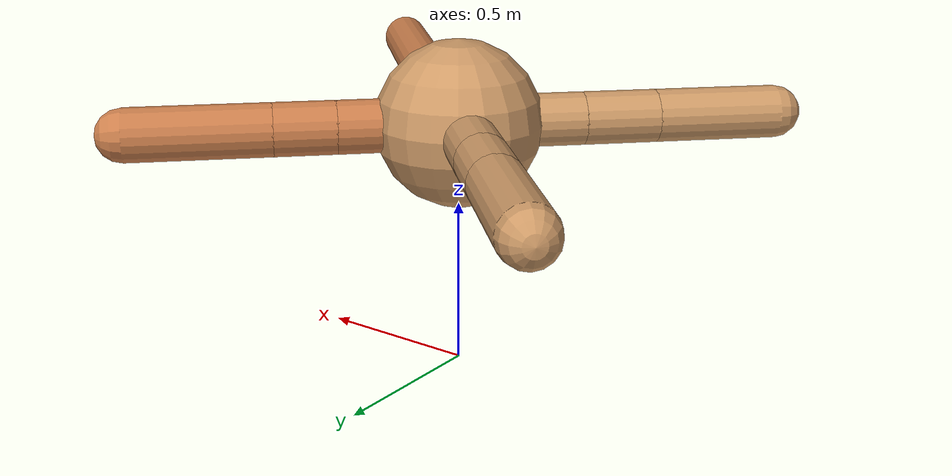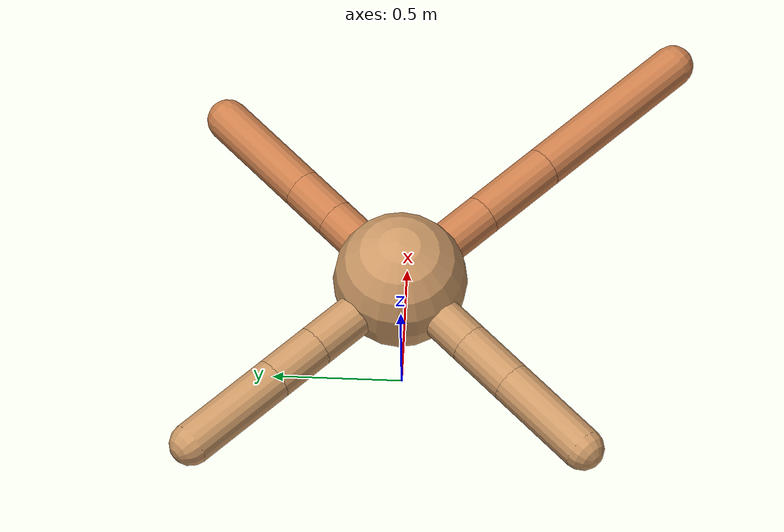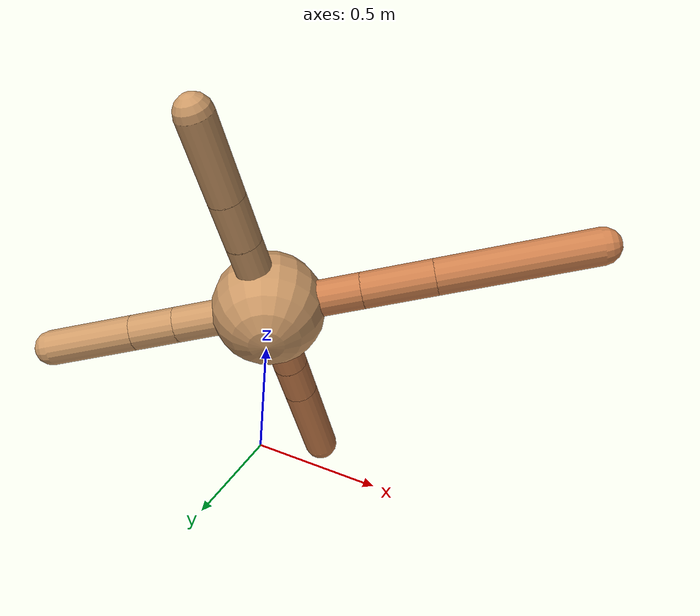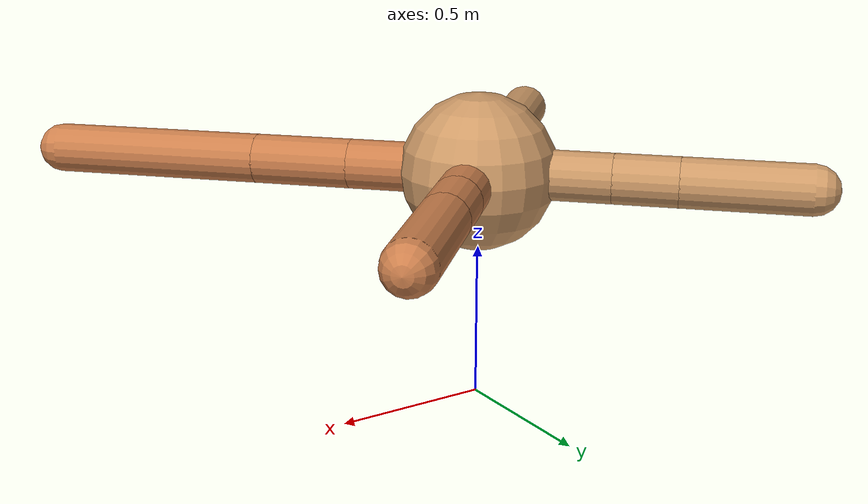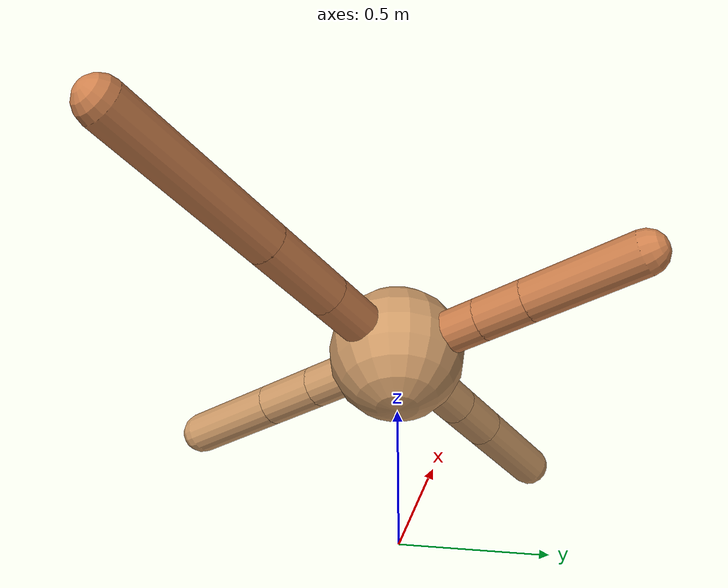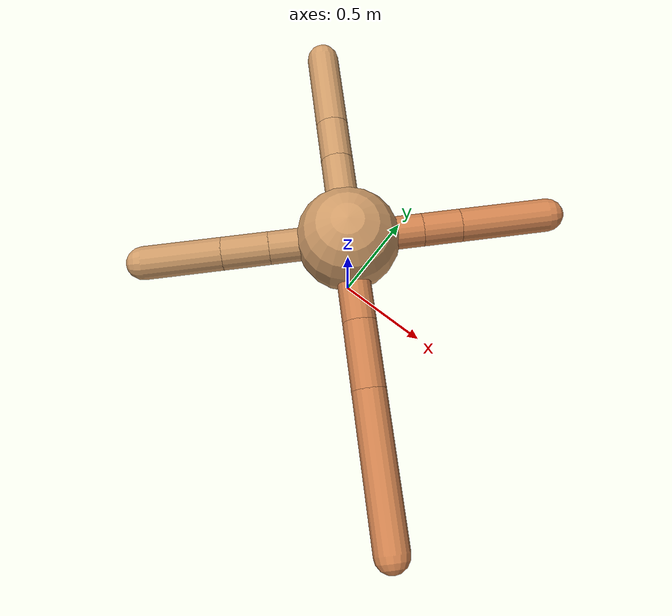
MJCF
<mujoco model="ant">
  <compiler angle="degree" coordinate="local" inertiafromgeom="true" />
  <option integrator="RK4" timestep="0.01" />
  <custom>
    <numeric data="0.0 0.0 0.55 1.0 0.0 0.0 0.0 0.0 1.0 0.0 -1.0 0.0 -1.0 0.0 1.0" name="init_qpos" />
  </custom>
  <default>
    <joint armature="1" damping="1" limited="true" />
    <geom conaffinity="0" condim="3" density="5.0" friction="1.5 0.1 0.1" margin="0.01" rgba="0.8 0.6 0.4 1" />
  </default>
  <worldbody>
    <body name="torso" pos="0 0 0.75">
      <geom name="torso_geom" pos="0 0 0" size="0.25" type="sphere" />

      <body name="front_left_leg" pos="0 0 0">
        <geom fromto="0.0 0.0 0.0 0.2546727886524619 0.2546727886524619 0.0" name="aux_1_geom" size="0.08" type="capsule" rgba=".8 .5 .3 1" />
        <body name="aux_1" pos="0.2546727886524619 0.2546727886524619 0.0">
          <joint axis="0 0 1" name="hip_1" pos="0.0 0.0 0.0" range="-40 40" type="hinge" />
          <geom fromto="0.0 0.0 0.0 0.13008697177105336 0.13008697177105336 0.0" name="left_leg_geom" size="0.08" type="capsule" rgba=".8 .5 .3 1" />
          <body pos="0.13008697177105336 0.13008697177105336 0.0" name="front_left_foot">
            <joint axis="-1 1 0" name="ankle_1" pos="0.0 0.0 0.0" range="30 100" type="hinge" />
            <geom fromto="0.0 0.0 0.0 0.30001578924767397 0.30001578924767397 0.0" name="left_ankle_geom" size="0.08" type="capsule" rgba=".8 .5 .3 1" />
          </body>
        </body>
      </body>
      <body name="front_right_leg" pos="0 0 0">
        <geom fromto="0.0 0.0 0.0 -0.29823146086194563 0.29823146086194563 0.0" name="aux_2_geom" size="0.08" type="capsule" />
        <body name="aux_2" pos="-0.29823146086194563 0.29823146086194563 0.0">
          <joint axis="0 0 1" name="hip_2" pos="0.0 0.0 0.0" range="-40 40" type="hinge" />
          <geom fromto="0.0 0.0 0.0 -0.1436783330956449 0.1436783330956449 0.0" name="right_leg_geom" size="0.08" type="capsule" />
          <body pos="-0.1436783330956449 0.1436783330956449 0.0" name="front_right_foot">
            <joint axis="1 1 0" name="ankle_2" pos="0.0 0.0 0.0" range="-100 -30" type="hinge" />
            <geom fromto="0.0 0.0 0.0 -0.2814427583219161 0.2814427583219161 0.0" name="right_ankle_geom" size="0.08" type="capsule" />
          </body>
        </body>
      </body>
      <body name="left_back_leg" pos="0 0 0">
        <geom fromto="0.0 0.0 0.0 -0.2651939192107419 -0.2651939192107419 0.0" name="aux_3_geom" size="0.08" type="capsule" />
        <body name="aux_3" pos="-0.2651939192107419 -0.2651939192107419 0.0">
          <joint axis="0 0 1" name="hip_3" pos="0.0 0.0 0.0" range="-40 40" type="hinge" />
          <geom fromto="0.0 0.0 0.0 -0.15796728756387235 -0.15796728756387235 0.0" name="back_leg_geom" size="0.08" type="capsule" />
          <body pos="-0.15796728756387235 -0.15796728756387235 0.0" name="left_back_foot">
            <joint axis="-1 1 0" name="ankle_3" pos="0.0 0.0 0.0" range="-100 -30" type="hinge" />
            <geom fromto="0.0 0.0 0.0 -0.26466764695687206 -0.26466764695687206 0.0" name="third_ankle_geom" size="0.08" type="capsule" />
          </body>
        </body>
      </body>
      <body name="right_back_leg" pos="0 0 0">
        <geom fromto="0.0 0.0 0.0 0.294856828649821 -0.294856828649821 0.0" name="aux_4_geom" size="0.08" type="capsule" rgba=".8 .5 .3 1" />
        <body name="aux_4" pos="0.294856828649821 -0.294856828649821 0.0">
          <joint axis="0 0 1" name="hip_4" pos="0.0 0.0 0.0" range="-40 40" type="hinge" />
          <geom fromto="0.0 0.0 0.0 0.22290507569715234 -0.22290507569715234 0.0" name="rightback_leg_geom" size="0.08" type="capsule" rgba=".8 .5 .3 1" />
          <body pos="0.22290507569715234 -0.22290507569715234 0.0" name="right_back_foot">
            <joint axis="1 1 0" name="ankle_4" pos="0.0 0.0 0.0" range="30 100" type="hinge" />
            <geom fromto="0.0 0.0 0.0 0.4835197625496716 -0.4835197625496716 0.0" name="fourth_ankle_geom" size="0.08" type="capsule" rgba=".8 .5 .3 1" />
          </body>
        </body>
      </body>
    </body>
  </worldbody>
  <actuator>
    <motor ctrllimited="true" ctrlrange="-1.0 1.0" joint="hip_4" gear="150" />
    <motor ctrllimited="true" ctrlrange="-1.0 1.0" joint="ankle_4" gear="150" />
    <motor ctrllimited="true" ctrlrange="-1.0 1.0" joint="hip_1" gear="150" />
    <motor ctrllimited="true" ctrlrange="-1.0 1.0" joint="ankle_1" gear="150" />
    <motor ctrllimited="true" ctrlrange="-1.0 1.0" joint="hip_2" gear="150" />
    <motor ctrllimited="true" ctrlrange="-1.0 1.0" joint="ankle_2" gear="150" />
    <motor ctrllimited="true" ctrlrange="-1.0 1.0" joint="hip_3" gear="150" />
    <motor ctrllimited="true" ctrlrange="-1.0 1.0" joint="ankle_3" gear="150" />
  </actuator>
</mujoco>
